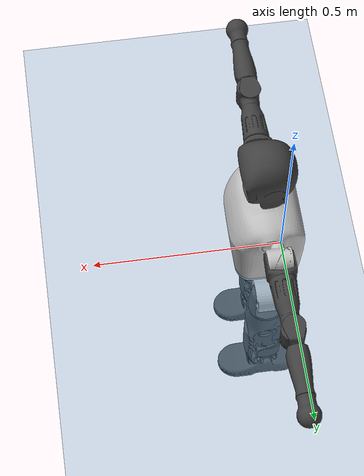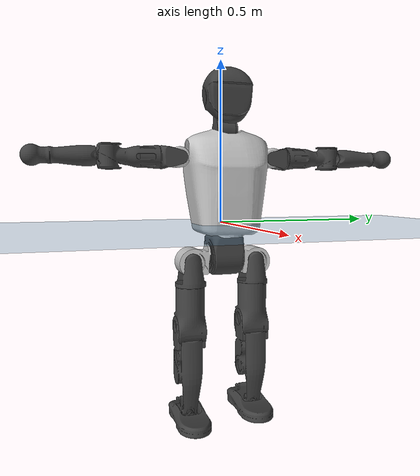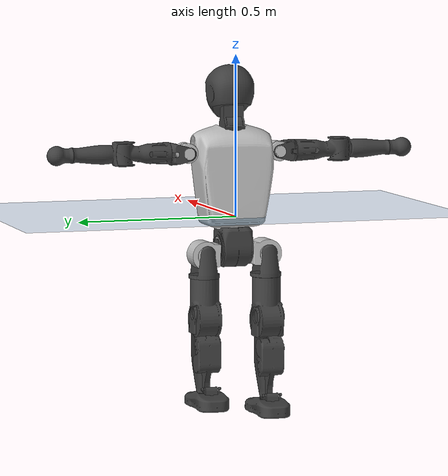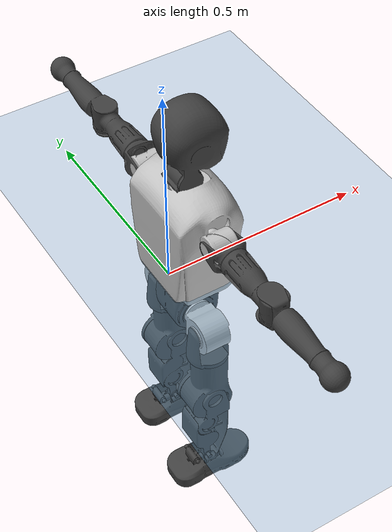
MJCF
<mujoco model="T1">
  <compiler angle="radian" assetdir="assets" balanceinertia="true" inertiafromgeom="false"/>

  <option timestep="0.005" density="1.2" viscosity="2e-05"/>

  <size nkey="1"/>

  <visual>
    <quality shadowsize="8192"/>
    <map shadowclip="0.5"/>
  </visual>

  <default>
    <default class="/">
      <joint armature="0.01" damping="0.01" frictionloss="0.1"/>
      <geom contype="0" conaffinity="0" group="1" solref="-1000 -80"/>
      <site size="0.01 0.005 0.005" group="5"/>
      <general forcelimited="true" biastype="affine" gainprm="25" biasprm="0 -25 -0.6"/>
      <default class="t1">
        <geom rgba="0.25 0.25 0.25 1"/>
        <default class="visual">
          <geom type="mesh" group="2"/>
        </default>
        <default class="collision">
          <geom group="3"/>
        </default>
        <default class="foot">
          <geom size="0.1115 0.05 0.015" type="box" condim="6" group="4" priority="1" solimp="0.015 1 0.015"/>
        </default>
        <default class="reward_collision_sphere">
          <geom group="5" rgba="1 0 0 1"/>
        </default>
      </default>
    </default>
  </default>

  <asset>
    <texture type="skybox" colorspace="auto" name="//unnamed_texture_0" builtin="gradient" rgb1="0.95 0.95 0.95" rgb2="0.95 0.95 0.95" width="100" height="600"/>
    <texture type="2d" colorspace="auto" name="texplane" builtin="checker" rgb1="0.345 0.575 0.748" rgb2="0.345 0.575 0.748" markrgb="1 1 1" width="512" height="512"/>
    <material name="MatPlane" class="/" texture="texplane" texuniform="true" texrepeat="2 2" specular="0.9"/>
    <mesh name="Trunk" class="/" file="Trunk.stl"/>
    <mesh name="H1" class="/" file="H1.stl"/>
    <mesh name="H2" class="/" file="H2.stl"/>
    <mesh name="AL1" class="/" file="AL1.stl"/>
    <mesh name="AL2" class="/" file="AL2.stl"/>
    <mesh name="AL3" class="/" file="AL3.stl"/>
    <mesh name="left_hand_link" class="/" file="left_hand_link.stl"/>
    <mesh name="AR1" class="/" file="AR1.stl"/>
    <mesh name="AR2" class="/" file="AR2.stl"/>
    <mesh name="AR3" class="/" file="AR3.stl"/>
    <mesh name="right_hand_link" class="/" file="right_hand_link.stl"/>
    <mesh name="Waist" class="/" file="Waist.stl"/>
    <mesh name="Hip_Pitch_Left" class="/" file="Hip_Pitch_Left.stl"/>
    <mesh name="Hip_Roll_Left" class="/" file="Hip_Roll_Left.stl"/>
    <mesh name="Hip_Yaw_Left" class="/" file="Hip_Yaw_Left.stl"/>
    <mesh name="Shank_Left" class="/" file="Shank_Left.stl"/>
    <mesh name="Ankle_Cross_Left" class="/" file="Ankle_Cross_Left.stl"/>
    <mesh name="left_foot_link" class="/" file="left_foot_link.stl"/>
    <mesh name="Hip_Pitch_Right" class="/" file="Hip_Pitch_Right.stl"/>
    <mesh name="Hip_Roll_Right" class="/" file="Hip_Roll_Right.stl"/>
    <mesh name="Hip_Yaw_Right" class="/" file="Hip_Yaw_Right.stl"/>
    <mesh name="Shank_Right" class="/" file="Shank_Right.stl"/>
    <mesh name="Ankle_Cross_Right" class="/" file="Ankle_Cross_Right.stl"/>
    <mesh name="right_foot_link" class="/" file="right_foot_link.stl"/>
  </asset>

  <worldbody>
    <geom name="floor" class="/" size="100 100 0.125" type="plane" group="0" material="MatPlane"/>
    <light name="toplight_shadow" class="/" pos="0 0 5" dir="0.0990148 0.0990148 -0.990148" type="directional" ambient="0.04 0.04 0.04" diffuse="0.55 0.55 0.55" specular="0.12 0.12 0.12"/>
    <light name="toplight_fill" class="/" pos="0 0 5" dir="0.0990148 0.0990148 -0.990148" type="directional" castshadow="false" ambient="0.04 0.04 0.04" diffuse="0.3 0.3 0.3" specular="0.08 0.08 0.08"/>
    <body name="trunk" childclass="t1" pos="-0.00267553 -0.0012537 0.00211253" quat="1 0.000231251 0.000103206 -0.000429097">
      <inertial pos="0.0407043 0.00129993 0.0978866" quat="0.999961 -0.000597782 -0.00880782 0.000158947" mass="7.3731" diaginertia="0.0195567 0.0535901 0.0338939"/>
      <joint name="//unnamed_joint_0" type="free" armature="0" damping="0" frictionloss="0"/>
      <geom name="//unnamed_geom_1" class="visual" rgba="0.76 0.76 0.76 1" mesh="Trunk"/>
      <geom name="//unnamed_geom_2" class="collision" size="0.064323 0.0857641 0.128646" pos="0.0438404 0 0.108666" type="box"/>
      <geom name="//unnamed_geom_3" class="reward_collision_sphere" size="0.0986287" pos="0.0438404 0 0.0905552"/>
      <geom name="//unnamed_geom_4" class="reward_collision_sphere" size="0.0128646" pos="0.0438404 0.0796192 0"/>
      <geom name="//unnamed_geom_5" class="reward_collision_sphere" size="0.0128646" pos="0.0438404 -0.0796192 0"/>
      <geom name="//unnamed_geom_6" class="reward_collision_sphere" size="0.0128646" pos="0.0438404 0.100226 0.162999"/>
      <geom name="//unnamed_geom_7" class="reward_collision_sphere" size="0.0128646" pos="0.0438404 -0.100226 0.162999"/>
      <site name="imu" pos="0.0105605 -0.01022 0.00947605" size="0.00857641"/>
      <camera name="track" pos="0 -1.87339 0" quat="0.707107 0.707107 0 0" mode="trackcom"/>
      <camera name="ego_camera" pos="0.0891422 0 0.380332" quat="-0.5 -0.5 0.5 0.5"/>
      <body name="H1" pos="0.0462907 0.000883552 0.217557" quat="1 -8.47487e-05 -4.95795e-05 -2.91331e-05">
        <inertial pos="-0.00267317 0.00100599 0.0540592" quat="0.761692 -0.0141964 0.00395136 0.647772" mass="0.2673" diaginertia="4.8653e-05 0.000160351 8.85861e-05"/>
        <joint name="AAHead_yaw" pos="0 0 0" axis="0.00562029 -0.00196882 0.999982" range="-1.62442 1.53426" armature="0.0077322" damping="0.000769577" frictionloss="0.0821697"/>
        <geom name="//unnamed_geom_8" class="visual" mesh="H1"/>
        <body name="H2" pos="-0.000172346 -0.000186488 0.0583319" quat="1 2.82896e-05 -2.9756e-05 -3.22354e-05">
          <inertial pos="0.00603264 0.00221169 0.0887541" quat="0.98758 0.100992 -0.0852453 -0.0849728" mass="0.392995" diaginertia="0.000402311 0.0014113 0.00103827"/>
          <joint name="Head_pitch" pos="0 0 0" axis="0.00245575 -0.999997 -8.79656e-06" range="-1.20608 0.340922" armature="0.00839629" damping="0.0143106" frictionloss="0.0774881"/>
          <geom name="//unnamed_geom_9" class="visual" mesh="H2"/>
          <geom name="//unnamed_geom_10" class="collision" size="0.0686112" pos="0.00730674 0 0.0996107"/>
          <geom name="//unnamed_geom_11" class="reward_collision_sphere" size="0.0771876" pos="0.0146135 0 0.0905552"/>
        </body>
      </body>
      <body name="AL1" pos="0.0431439 0.10246 0.196364" quat="1 -3.1148e-06 0.000425376 -7.71348e-06">
        <inertial pos="-0.00365121 0.0414956 0.000916465" quat="0.502701 0.495995 -0.505339 0.495897" mass="0.334298" diaginertia="0.00028536 0.000977259 0.000183574"/>
        <joint name="Left_Shoulder_Pitch" pos="0 0 0" axis="0.0104721 0.999882 0.0112506" stiffness="0.00662632" range="-3.31348 1.27575" armature="0.0091095" damping="0.00856439" frictionloss="0.0831307"/>
        <geom name="//unnamed_geom_12" class="visual" rgba="0.76 0.76 0.76 1" mesh="AL1"/>
        <body name="AL2" pos="-0.000322886 0.0441227 -0.00278234" quat="1 0.000207938 -0.000370722 -0.000129589">
          <inertial pos="0.0011829 0.0326665 0.000337638" quat="0.486502 0.513551 -0.489262 0.510103" mass="0.0970269" diaginertia="8.15711e-05 0.000246683 0.000104141"/>
          <joint name="Left_Shoulder_Roll" pos="0 0 0" axis="-0.999998 -0.000182632 0.00209076" range="-1.63053 1.79337" armature="0.00868234" damping="0.0118574" frictionloss="0.0861797"/>
          <geom name="//unnamed_geom_13" class="visual" mesh="AL2"/>
          <body name="AL3" pos="0.00196492 0.0561005 0.0031314" quat="0.999999 -0.000591986 0.000814646 -0.000306303">
            <inertial pos="-0.000290583 0.0790562 -0.000660897" quat="0.706239 0.707964 -0.00356777 -0.000246107" mass="0.66013" diaginertia="0.00276882 0.00914085 0.000373929"/>
            <joint name="Left_Elbow_Pitch" pos="0 0 0" axis="0.00224455 -0.999995 -0.00231537" range="-2.26328 2.2667" armature="0.00758119" damping="0.0177071" frictionloss="0.081665"/>
            <geom name="//unnamed_geom_14" class="visual" mesh="AL3"/>
            <geom name="//unnamed_geom_15" class="collision" size="0.0257292 0.064323" pos="0 0.0468348 0" quat="0.707105 0.707108 0 0" type="cylinder"/>
            <geom name="//unnamed_geom_16" class="reward_collision_sphere" size="0.0308751"/>
            <body name="left_hand_link" pos="-0.00225312 0.138483 0.000985903" quat="1 -0.000345095 -0.00014325 -0.000100159">
              <inertial pos="0.000860094 0.100382 0.00294893" quat="0.702098 0.711991 0.0112514 -0.000792462" mass="0.199464" diaginertia="0.0017185 0.00586769 0.000128041"/>
              <joint name="Left_Elbow_Yaw" pos="0 0 0" axis="0.00459743 0.00246538 0.999986" stiffness="0.00610077" range="-2.45487 -0.0509917" armature="0.00868629" damping="0.0130002" frictionloss="0.087876"/>
              <geom name="//unnamed_geom_17" class="visual" mesh="left_hand_link"/>
              <geom name="//unnamed_geom_18" class="collision" size="0.0257292 0.0750435" pos="0 0.12177 0" quat="0.707105 0.707108 0 0" type="cylinder"/>
              <geom name="//unnamed_geom_19" class="reward_collision_sphere" size="0.042882"/>
              <geom name="//unnamed_geom_20" class="reward_collision_sphere" size="0.0300174" pos="0 0.103037 0"/>
              <geom name="//unnamed_geom_21" class="reward_collision_sphere" size="0.0300174" pos="0 0.20139 0"/>
            </body>
          </body>
        </body>
      </body>
      <body name="AR1" pos="0.044395 -0.0990084 0.195829" quat="1 0.00076026 0.000381837 -0.000104219">
        <inertial pos="-0.002291 -0.0435304 5.9147e-05" quat="0.503475 0.497274 -0.504792 0.494385" mass="0.32312" diaginertia="0.000276509 0.000897267 0.00017265"/>
        <joint name="Right_Shoulder_Pitch" pos="0 0 0" axis="0.00104772 -0.999999 -0.000713897" stiffness="0.00551696" range="-1.18803 3.32763" armature="0.00965287" damping="0.00812411" frictionloss="0.0938593"/>
        <geom name="//unnamed_geom_22" class="visual" rgba="0.76 0.76 0.76 1" mesh="AR1"/>
        <body name="AR2" pos="-0.000866752 -0.046053 -0.000798457" quat="0.999999 -0.00119533 -8.67304e-05 -0.000394462">
          <inertial pos="4.28075e-05 -0.0362799 -0.00230767" quat="0.510578 0.499521 -0.504319 0.485234" mass="0.101036" diaginertia="8.25141e-05 0.000249132 0.000107449"/>
          <joint name="Right_Shoulder_Roll" pos="0 0 0" axis="-0.999798 0.0129506 0.015353" range="-1.75292 1.59239" armature="0.00837385" damping="0.00806265" frictionloss="0.0843341"/>
          <geom name="//unnamed_geom_23" class="visual" mesh="AR2"/>
          <body name="AR3" pos="-0.000281704 -0.0580275 0.00056383" quat="1 0.000316074 1.20474e-05 -0.00074927">
            <inertial pos="-0.000831422 -0.0808388 0.00112763" quat="0.708043 0.706169 -0.000377716 0.000527509" mass="0.624151" diaginertia="0.00258767 0.0089538 0.000355137"/>
            <joint name="Right_Elbow_Pitch" pos="0 0 0" axis="3.64226e-05 1 2.77687e-05" range="-2.29568 2.28228" armature="0.00863373" damping="0.0141518" frictionloss="0.0822319"/>
            <geom name="//unnamed_geom_24" class="visual" mesh="AR3"/>
            <geom name="//unnamed_geom_25" class="collision" size="0.0257292 0.064323" pos="0 -0.0468348 0" quat="0.707105 0.707108 0 0" type="cylinder"/>
            <geom name="//unnamed_geom_26" class="reward_collision_sphere" size="0.0308751"/>
            <body name="right_hand_link" pos="-0.00300804 -0.13706 0.000807006" quat="1 4.49658e-05 3.39748e-05 0.000101851">
              <inertial pos="-0.000293873 -0.100285 -0.000134275" quat="0.707188 0.707012 -0.00290704 -0.00323052" mass="0.201646" diaginertia="0.00170092 0.00587935 0.000126242"/>
              <joint name="Right_Elbow_Yaw" pos="0 0 0" axis="0.00195864 -0.00108537 0.999997" stiffness="0.00249514" range="-0.0440588 2.43505" armature="0.00729562" damping="0.0114969" frictionloss="0.0976041"/>
              <geom name="//unnamed_geom_27" class="visual" mesh="right_hand_link"/>
              <geom name="//unnamed_geom_28" class="collision" size="0.0257292 0.0750435" pos="0 -0.12177 0" quat="0.707105 0.707108 0 0" type="cylinder"/>
              <geom name="//unnamed_geom_29" class="reward_collision_sphere" size="0.042882"/>
              <geom name="//unnamed_geom_30" class="reward_collision_sphere" size="0.0300174" pos="0 -0.103037 0"/>
              <geom name="//unnamed_geom_31" class="reward_collision_sphere" size="0.0300174" pos="0 -0.20139 0"/>
            </body>
          </body>
        </body>
      </body>
      <body name="Waist" pos="0.0467472 -0.00409764 -0.10198" quat="1 7.91269e-05 0.000169664 -1.63262e-05">
        <inertial pos="0.00111305 0.00173766 0.00431992" quat="0.983641 5.82742e-05 -0.180121 0.00269036" mass="1.5692" diaginertia="0.00108206 0.00361681 0.0027528"/>
        <joint name="Waist" pos="0 0 0" axis="-0.0034648 0.0122541 0.999919" stiffness="0.00880092" range="-1.5739 1.60372" armature="0.00850611" damping="0.0102119" frictionloss="0.0849259"/>
        <geom name="//unnamed_geom_32" class="visual" mesh="Waist"/>
        <body name="Hip_Pitch_Left" pos="-2.48093e-05 0.0969108 0.000352386" quat="0.999999 -0.000184516 0.00107715 5.05e-05">
          <inertial pos="0.001164 -0.00823764 -0.0159794" quat="0.975299 0.22016 0.0178788 -0.00162001" mass="0.661423" diaginertia="0.000384607 0.00111362 0.000768246"/>
          <joint name="Left_Hip_Pitch" pos="0 0 0" axis="-0.00682019 0.999971 0.00332448" stiffness="0.00628128" range="-1.74902 1.54676" armature="0.00976852" damping="0.0135218" frictionloss="0.0816656"/>
          <geom name="//unnamed_geom_33" class="visual" rgba="0.76 0.76 0.76 1" mesh="Hip_Pitch_Left"/>
          <body name="Hip_Roll_Left" pos="0.00190586 -0.00334481 -0.0144839" quat="1 -5.41533e-06 0.000101094 -0.000290215">
            <inertial pos="0.00177685 0.000343759 -0.0515198" quat="0.707851 -0.00616106 -0.00522907 0.706315" mass="0.235656" diaginertia="0.000348459 0.00106434 0.00030232"/>
            <joint name="Left_Hip_Roll" pos="0 0 0" axis="-0.999914 -0.00723385 -0.0109371" range="-1.59066 0.256841" armature="0.00924323" damping="0.0144949" frictionloss="0.0941844"/>
            <geom name="//unnamed_geom_34" class="visual" mesh="Hip_Roll_Left"/>
            <geom name="//unnamed_geom_35" class="reward_collision_sphere" size="0.0471702"/>
            <body name="Hip_Yaw_Left" pos="0.0055113 -0.00347536 -0.0709283" quat="0.999999 0.000875015 -0.00100915 -9.67656e-06">
              <inertial pos="-0.0040328 0.00115733 -0.0831423" quat="0.702733 -0.042264 -0.0308122 0.709528" mass="1.37667" diaginertia="0.00520509 0.0183412 0.00157351"/>
              <joint name="Left_Hip_Yaw" pos="0 0 0" axis="-0.000277001 -0.00231855 -0.999997" range="-0.997314 1.00147" armature="0.00846138" damping="0.014198" frictionloss="0.0859902"/>
              <geom name="//unnamed_geom_36" class="visual" mesh="Hip_Yaw_Left"/>
              <geom name="//unnamed_geom_37" class="collision" size="0.042882 0.0686112" type="cylinder"/>
              <body name="Shank_Left" pos="-0.00474946 -0.00145227 -0.1157" quat="1 0.000145604 -3.04391e-05 -5.21105e-05">
                <inertial pos="-0.00625561 -0.00077571 -0.112976" quat="0.997441 0.0135711 -0.0298076 0.0635436" mass="1.12054" diaginertia="0.00757254 0.0253992 0.0011251"/>
                <joint name="Left_Knee_Pitch" pos="0 0 0" axis="0.00777877 0.999943 0.00728191" range="0.00452946 2.28865" armature="0.00971551" damping="0" frictionloss="0.089858"/>
                <geom name="//unnamed_geom_38" class="visual" mesh="Shank_Left"/>
                <geom name="//unnamed_geom_39" class="collision" size="0.042882 0.064323" pos="0 0 -0.108666" type="cylinder"/>
                <geom name="//unnamed_geom_40" class="reward_collision_sphere" size="0.0557466"/>
                <body name="Ankle_Cross_Left" pos="0.000885333 -0.0013759 -0.255501" quat="0.999999 0.00104213 0.000117609 -0.000878338">
                  <inertial pos="-0.00179465 0.00123375 -0.00451514" quat="0.441962 0.547712 0.552662 0.446369" mass="0.0460284" diaginertia="5.82444e-06 1.85171e-05 7.12656e-06"/>
                  <joint name="Left_Ankle_Pitch" pos="0 0 0" axis="0.000284498 1 -0.000395857" range="-0.864272 0.341213" armature="0.00840848" damping="0.0141049" frictionloss="0.0817194"/>
                  <geom name="//unnamed_geom_41" class="visual" mesh="Ankle_Cross_Left"/>
                  <body name="left_foot_link" pos="-0.00291492 -0.00255907 -0.00908353" quat="1 -0.000373427 0.000144546 0.000199888">
                    <inertial pos="-0.00219905 -0.0025273 -0.00865534" quat="0.00028454 0.61792 -0.000399318 0.786241" mass="0.425699" diaginertia="0.000540805 0.00169284 0.00136521"/>
                    <joint name="Left_Ankle_Roll" pos="0 0 0" axis="-0.999995 0.00160368 -0.00264665" range="-0.399756 0.490432" armature="0.0085934" damping="0" frictionloss="0.078848"/>
                    <geom name="//unnamed_geom_42" class="visual" mesh="left_foot_link"/>
                    <geom name="left_foot" class="foot" size="0.106623 0.0420494 0.0127953" pos="0.00730674 0 -0.0135833"/>
                    <geom name="//unnamed_geom_44" class="reward_collision_sphere" size="0.0445973" pos="0.00730674 0 -0.0135833"/>
                    <geom name="//unnamed_geom_45" class="reward_collision_sphere" size="0.0257292" pos="0.069414 -0.021544 -0.0135833"/>
                    <geom name="//unnamed_geom_46" class="reward_collision_sphere" size="0.0257292" pos="-0.0511471 -0.021544 -0.0135833"/>
                    <site name="left_foot" class="foot" pos="0.00730674 0 -0.0135833" size="0.00857641"/>
                  </body>
                </body>
              </body>
            </body>
          </body>
        </body>
        <body name="Hip_Pitch_Right" pos="-0.00424058 -0.102135 0.00187056" quat="1 -0.000242678 0.000132451 -0.000325445">
          <inertial pos="9.25525e-05 0.00605585 -0.0183339" quat="0.971209 -0.237901 0.0118059 -0.00410534" mass="0.645882" diaginertia="0.000386119 0.00108906 0.000771707"/>
          <joint name="Right_Hip_Pitch" pos="0 0 0" axis="-0.00541716 -0.999985 0.00111152" range="-1.60346 1.74648" armature="0.007432" damping="0.00694025" frictionloss="0.0973877"/>
          <geom name="//unnamed_geom_47" class="visual" rgba="0.76 0.76 0.76 1" mesh="Hip_Pitch_Right"/>
          <body name="Hip_Roll_Right" pos="-0.00287053 -0.00156218 -0.0164173" quat="0.999999 -0.00104096 -3.76945e-05 0.000902927">
            <inertial pos="-0.00133098 0.00211652 -0.0462219" quat="0.710459 -0.00165681 -0.00745413 0.703697" mass="0.249954" diaginertia="0.000361893 0.00105931 0.000315845"/>
            <joint name="Right_Hip_Roll" pos="0 0 0" axis="-0.999997 0.00204238 0.000950263" stiffness="0.00319822" range="-0.213384 1.55714" armature="0.0089359" damping="0.0173692" frictionloss="0.0958998"/>
            <geom name="//unnamed_geom_48" class="visual" mesh="Hip_Roll_Right"/>
            <geom name="//unnamed_geom_49" class="reward_collision_sphere" size="0.0471702"/>
            <body name="Hip_Yaw_Right" pos="0.000800037 -0.00216229 -0.0786667" quat="1 -0.000345865 -0.000253941 0.000189334">
              <inertial pos="-0.00500169 -0.00182452 -0.0782728" quat="0.713208 -0.0320453 -0.0291948 0.69961" mass="1.39196" diaginertia="0.00537884 0.0179241 0.00157643"/>
              <joint name="Right_Hip_Yaw" pos="0 0 0" axis="-0.00475236 -0.00400638 -0.999981" range="-0.984288 1.01967" armature="0.00883442" damping="0.00532877" frictionloss="0.075169"/>
              <geom name="//unnamed_geom_50" class="visual" mesh="Hip_Yaw_Right"/>
              <geom name="//unnamed_geom_51" class="collision" size="0.042882 0.0686112" type="cylinder"/>
              <body name="Shank_Right" pos="-0.0110346 -0.0026504 -0.123135" quat="0.999999 0.000659674 -0.000118447 -0.00104908">
                <inertial pos="-0.0050579 -0.00166176 -0.11129" quat="0.999336 0.00707091 -0.0264943 -0.023985" mass="1.1611" diaginertia="0.00717732 0.0255611 0.00119813"/>
                <joint name="Right_Knee_Pitch" pos="0 0 0" axis="-0.00314322 -0.999995 -0.000451565" range="-2.35436 -0.0152807" armature="0.00778152" damping="0.00966255" frictionloss="0.084408"/>
                <geom name="//unnamed_geom_52" class="visual" mesh="Shank_Right"/>
                <geom name="//unnamed_geom_53" class="collision" size="0.042882 0.064323" pos="0 0 -0.108666" type="cylinder"/>
                <geom name="//unnamed_geom_54" class="reward_collision_sphere" size="0.0557466"/>
                <body name="Ankle_Cross_Right" pos="-0.000435797 0.00102648 -0.25764" quat="1 7.08905e-05 0.000165095 5.37481e-05">
                  <inertial pos="-0.00102633 0.00318724 -0.00704181" quat="0.443821 0.550247 0.551171 0.44324" mass="0.0439718" diaginertia="6.02431e-06 1.76873e-05 6.88963e-06"/>
                  <joint name="Right_Ankle_Pitch" pos="0 0 0" axis="0.000555244 -0.999987 0.00514732" range="-0.298339 0.828511" armature="0.00866692" damping="0.0211916" frictionloss="0.0864582"/>
                  <geom name="//unnamed_geom_55" class="visual" mesh="Ankle_Cross_Right"/>
                  <body name="right_foot_link" pos="0.00151433 0.000667102 -0.0178106" quat="1 -8.32021e-05 3.03368e-06 8.18e-05">
                    <inertial pos="-4.49314e-05 0.00134667 -0.00774898" quat="0.0038867 0.620949 0.0052976 0.783824" mass="0.421875" diaginertia="0.000567581 0.0017441 0.00134807"/>
                    <joint name="Right_Ankle_Roll" pos="0 0 0" axis="-0.999948 -0.00558188 -0.00849913" range="-0.473633 0.446907" armature="0.0091454" damping="0.0129101" frictionloss="0.0954638"/>
                    <geom name="//unnamed_geom_56" class="visual" mesh="right_foot_link"/>
                    <geom name="right_foot" class="foot" size="0.0995113 0.0402493 0.0134255" pos="0.00730674 0 -0.0135833"/>
                    <geom name="//unnamed_geom_58" class="reward_collision_sphere" size="0.0343056"/>
                    <geom name="//unnamed_geom_59" class="reward_collision_sphere" size="0.0257292" pos="0.00730674 0 -0.0135833"/>
                    <geom name="//unnamed_geom_60" class="reward_collision_sphere" size="0.0257292" pos="0.069414 0.021544 -0.0135833"/>
                    <geom name="//unnamed_geom_61" class="reward_collision_sphere" size="0.0257292" pos="-0.0511471 0.021544 -0.0135833"/>
                    <site name="right_foot" class="foot" pos="0.00730674 0 -0.0135833" size="0.00857641"/>
                  </body>
                </body>
              </body>
            </body>
          </body>
        </body>
      </body>
    </body>
  </worldbody>

  <contact>
    <pair class="/" geom1="floor" geom2="left_foot" name="//unnamed_contact_0"/>
    <pair class="/" geom1="floor" geom2="right_foot" name="//unnamed_contact_1"/>
  </contact>

  <actuator>
    <general name="AAHead_yaw" class="/" joint="AAHead_yaw" forcerange="-5.98801 5.98801" gainprm="19.8552" biasprm="0 -19.8552 -0.543456"/>
    <general name="Head_pitch" class="/" joint="Head_pitch" forcerange="-5.78624 5.78624" gainprm="19.8552" biasprm="0 -19.8552 -0.543456"/>
    <general name="Left_Shoulder_Pitch" class="/" joint="Left_Shoulder_Pitch" forcerange="-15.8576 15.8576" gainprm="19.8552" biasprm="0 -19.8552 -0.543456"/>
    <general name="Left_Shoulder_Roll" class="/" joint="Left_Shoulder_Roll" forcerange="-14.7934 14.7934" gainprm="19.8552" biasprm="0 -19.8552 -0.543456"/>
    <general name="Left_Elbow_Pitch" class="/" joint="Left_Elbow_Pitch" forcerange="-16.922 16.922" gainprm="19.8552" biasprm="0 -19.8552 -0.543456"/>
    <general name="Left_Elbow_Yaw" class="/" joint="Left_Elbow_Yaw" forcerange="-15.7788 15.7788" gainprm="19.8552" biasprm="0 -19.8552 -0.543456"/>
    <general name="Right_Shoulder_Pitch" class="/" joint="Right_Shoulder_Pitch" forcerange="-14.9018 14.9018" gainprm="19.8552" biasprm="0 -19.8552 -0.543456"/>
    <general name="Right_Shoulder_Roll" class="/" joint="Right_Shoulder_Roll" forcerange="-16.7317 16.7317" gainprm="19.8552" biasprm="0 -19.8552 -0.543456"/>
    <general name="Right_Elbow_Pitch" class="/" joint="Right_Elbow_Pitch" forcerange="-16.0858 16.0858" gainprm="19.8552" biasprm="0 -19.8552 -0.543456"/>
    <general name="Right_Elbow_Yaw" class="/" joint="Right_Elbow_Yaw" forcerange="-14.1945 14.1945" gainprm="19.8552" biasprm="0 -19.8552 -0.543456"/>
    <general name="Waist" class="/" joint="Waist" forcerange="-24.2896 24.2896" gainprm="19.8552" biasprm="0 -19.8552 -0.543456"/>
    <general name="Left_Hip_Pitch" class="/" joint="Left_Hip_Pitch" forcerange="-38.5091 38.5091" gainprm="19.8552" biasprm="0 -19.8552 -0.543456"/>
    <general name="Left_Hip_Roll" class="/" joint="Left_Hip_Roll" forcerange="-28.282 28.282" gainprm="19.8552" biasprm="0 -19.8552 -0.543456"/>
    <general name="Left_Hip_Yaw" class="/" joint="Left_Hip_Yaw" forcerange="-23.1156 23.1156" gainprm="19.8552" biasprm="0 -19.8552 -0.543456"/>
    <general name="Left_Knee_Pitch" class="/" joint="Left_Knee_Pitch" forcerange="-52.6203 52.6203" gainprm="19.8552" biasprm="0 -19.8552 -0.543456"/>
    <general name="Left_Ankle_Pitch" class="/" joint="Left_Ankle_Pitch" forcerange="-17.2197 17.2197" gainprm="19.8552" biasprm="0 -19.8552 -0.543456"/>
    <general name="Left_Ankle_Roll" class="/" joint="Left_Ankle_Roll" forcerange="-14.013 14.013" gainprm="19.8552" biasprm="0 -19.8552 -0.543456"/>
    <general name="Right_Hip_Pitch" class="/" joint="Right_Hip_Pitch" forcerange="-40.0172 40.0172" gainprm="19.8552" biasprm="0 -19.8552 -0.543456"/>
    <general name="Right_Hip_Roll" class="/" joint="Right_Hip_Roll" forcerange="-25.2394 25.2394" gainprm="19.8552" biasprm="0 -19.8552 -0.543456"/>
    <general name="Right_Hip_Yaw" class="/" joint="Right_Hip_Yaw" forcerange="-25.8954 25.8954" gainprm="19.8552" biasprm="0 -19.8552 -0.543456"/>
    <general name="Right_Knee_Pitch" class="/" joint="Right_Knee_Pitch" forcerange="-56.6843 56.6843" gainprm="19.8552" biasprm="0 -19.8552 -0.543456"/>
    <general name="Right_Ankle_Pitch" class="/" joint="Right_Ankle_Pitch" forcerange="-17.3536 17.3536" gainprm="19.8552" biasprm="0 -19.8552 -0.543456"/>
    <general name="Right_Ankle_Roll" class="/" joint="Right_Ankle_Roll" forcerange="-13.7084 13.7084" gainprm="19.8552" biasprm="0 -19.8552 -0.543456"/>
  </actuator>

  <sensor>
    <gyro site="imu" name="imu_angular_velocity"/>
    <velocimeter site="imu" name="imu_linear_velocity"/>
    <framelinvel objtype="site" objname="left_foot" name="left_foot_global_linear_velocity"/>
    <framelinvel objtype="site" objname="right_foot" name="right_foot_global_linear_velocity"/>
  </sensor>

  <keyframe>
    <key name="home" qpos="0 0 0.6385 1 0 0 0 0 0 0 1.4 0 -0.4 0 -1.4 0 0.4 0 -0.4 0 0 0.8 -0.4 0 0.4 0 0 -0.8 0.4 0"/>
  </keyframe>
</mujoco>
